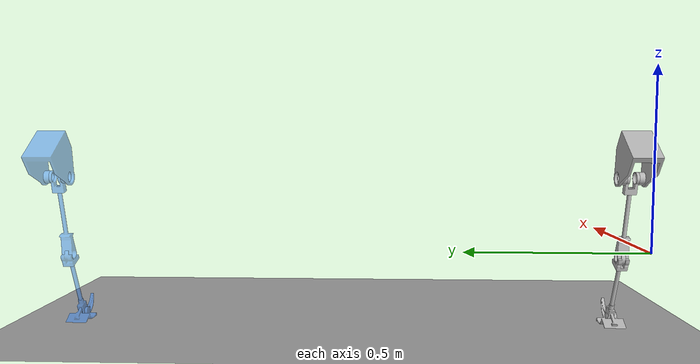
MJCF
<mujoco model="epa_dual_twin">
  <compiler angle="radian"/>
  <option gravity="0 0 -9.81" timestep="0.002" integrator="RK4"/>

  <visual>
    <headlight ambient="0.4 0.4 0.4"/>
  </visual>

  <asset>
    <texture type="skybox" builtin="gradient" rgb1="0.3 0.5 0.7"
             rgb2="0.9 0.9 0.9" width="512" height="512"/>
    <texture name="grid" type="2d" builtin="checker"
             rgb1="0.8 0.8 0.8" rgb2="0.7 0.7 0.7"
             width="300" height="300"/>
    <material name="grid_mat" texture="grid" texrepeat="5 5"
              reflectance="0.1"/>

    <mesh name="base_link_actual" content_type="model/stl" file="/home/krishna/epa_twin_project/meshes/base_link.stl" scale="0.001 0.001 0.001"/>
    <mesh name="actuator_1_v1_1_actual" content_type="model/stl" file="/home/krishna/epa_twin_project/meshes/actuator_1_v1_1.stl" scale="0.001 0.001 0.001"/>
    <mesh name="actuator_2_v1_1_actual" content_type="model/stl" file="/home/krishna/epa_twin_project/meshes/actuator_2_v1_1.stl" scale="0.001 0.001 0.001"/>
    <mesh name="hip_clevis_v1_1_actual" content_type="model/stl" file="/home/krishna/epa_twin_project/meshes/hip_clevis_v1_1.stl" scale="0.001 0.001 0.001"/>
    <mesh name="leg_1_rod_v1_1_actual" content_type="model/stl" file="/home/krishna/epa_twin_project/meshes/leg_1_rod_v1_1.stl" scale="0.001 0.001 0.001"/>
    <mesh name="knee_bearing_holder_v1_1_actual" content_type="model/stl" file="/home/krishna/epa_twin_project/meshes/knee_bearing_holder_v1_1.stl" scale="0.001 0.001 0.001"/>
    <mesh name="leg_2_rod_v1_1_actual" content_type="model/stl" file="/home/krishna/epa_twin_project/meshes/leg_2_rod_v1_1.stl" scale="0.001 0.001 0.001"/>
    <mesh name="ankle_bracelet_v1_1_actual" content_type="model/stl" file="/home/krishna/epa_twin_project/meshes/ankle_bracelet_v1_1.stl" scale="0.001 0.001 0.001"/>
    <mesh name="ankle_clevis_v1_1_actual" content_type="model/stl" file="/home/krishna/epa_twin_project/meshes/ankle_clevis_v1_1.stl" scale="0.001 0.001 0.001"/>
    <mesh name="knee_bearing_v1_1_actual" content_type="model/stl" file="/home/krishna/epa_twin_project/meshes/knee_bearing_v1_1.stl" scale="0.001 0.001 0.001"/>
    <mesh name="ankle_bearing_v1_1_actual" content_type="model/stl" file="/home/krishna/epa_twin_project/meshes/ankle_bearing_v1_1.stl" scale="0.001 0.001 0.001"/>
    <mesh name="leg_stack_v1_1_actual" content_type="model/stl" file="/home/krishna/epa_twin_project/meshes/leg_stack_v1_1.stl" scale="0.001 0.001 0.001"/>

    <mesh name="base_link_predicted" file="/home/krishna/epa_twin_project/meshes/base_link.stl" scale="0.001 0.001 0.001"/>
    <mesh name="actuator_1_v1_1_predicted" file="/home/krishna/epa_twin_project/meshes/actuator_1_v1_1.stl" scale="0.001 0.001 0.001"/>
    <mesh name="actuator_2_v1_1_predicted" file="/home/krishna/epa_twin_project/meshes/actuator_2_v1_1.stl" scale="0.001 0.001 0.001"/>
    <mesh name="hip_clevis_v1_1_predicted" file="/home/krishna/epa_twin_project/meshes/hip_clevis_v1_1.stl" scale="0.001 0.001 0.001"/>
    <mesh name="leg_1_rod_v1_1_predicted" file="/home/krishna/epa_twin_project/meshes/leg_1_rod_v1_1.stl" scale="0.001 0.001 0.001"/>
    <mesh name="knee_bearing_holder_v1_1_predicted" file="/home/krishna/epa_twin_project/meshes/knee_bearing_holder_v1_1.stl" scale="0.001 0.001 0.001"/>
    <mesh name="leg_2_rod_v1_1_predicted" file="/home/krishna/epa_twin_project/meshes/leg_2_rod_v1_1.stl" scale="0.001 0.001 0.001"/>
    <mesh name="ankle_bracelet_v1_1_predicted" file="/home/krishna/epa_twin_project/meshes/ankle_bracelet_v1_1.stl" scale="0.001 0.001 0.001"/>
    <mesh name="ankle_clevis_v1_1_predicted" file="/home/krishna/epa_twin_project/meshes/ankle_clevis_v1_1.stl" scale="0.001 0.001 0.001"/>
    <mesh name="knee_bearing_v1_1_predicted" file="/home/krishna/epa_twin_project/meshes/knee_bearing_v1_1.stl" scale="0.001 0.001 0.001"/>
    <mesh name="ankle_bearing_v1_1_predicted" file="/home/krishna/epa_twin_project/meshes/ankle_bearing_v1_1.stl" scale="0.001 0.001 0.001"/>
    <mesh name="leg_stack_v1_1_predicted" file="/home/krishna/epa_twin_project/meshes/leg_stack_v1_1.stl" scale="0.001 0.001 0.001"/>

  </asset>

  <worldbody>
    <light directional="true" pos="0 0.25 2" dir="0 0 -1"
           diffuse="0.8 0.8 0.8"/>
    <!-- Floor placed at tested correct height for foot clearance -->
    <geom name="floor" type="plane" size="3 3 0.05"
          pos="0 0.25 -0.21" material="grid_mat"/>

    <!-- ACTUAL LEG (silver, noisy/drifting) -->

    <geom type="mesh" rgba="0.7 0.7 0.7 1" mesh="base_link_actual"/>
    <geom type="mesh" rgba="0.7 0.7 0.7 1" mesh="actuator_1_v1_1_actual"/>
    <geom type="mesh" rgba="0.7 0.7 0.7 1" mesh="actuator_2_v1_1_actual"/>
    <body name="hip_clevis_v1_1_actual" pos="-0.05457 0.094588 0.204524">
      <inertial pos="0.0392011 -0.015588 -0.1019" quat="0.983604 0 -0.18034 0" mass="0.0915237" diaginertia="0.000584301 0.000581119 1.18179e-05"/>
      <joint name="Hip_actual" pos="0 0 0" axis="0 -1 0" range="-0.261799 1.5708" actuatorfrcrange="-100 100" damping="2" frictionloss="0.2"/>
      <geom pos="0.05457 -0.094588 -0.204524" type="mesh" rgba="0.7 0.7 0.7 1" mesh="hip_clevis_v1_1_actual"/>
      <geom pos="0.05457 -0.094588 -0.204524" type="mesh" rgba="0.7 0.7 0.7 1" mesh="leg_1_rod_v1_1_actual"/>
      <body name="knee_bearing_holder_v1_1_actual" pos="0.070356 -0.020301 -0.212103">
        <inertial pos="0.110671 0.0561601 -0.0673519" quat="0.33562 0.428228 0.728259 0.416675" mass="0.184834" diaginertia="0.00662782 0.00590616 0.00085757"/>
        <joint name="Knee_actual" pos="0 0 0" axis="0 1 0" range="-0.523599 0.034907" actuatorfrcrange="-100 100" damping="2" frictionloss="0.2"/>
        <geom pos="-0.015786 -0.074287 0.007579" quat="1 0 0 0" type="mesh" rgba="0.7 0.7 0.7 1" mesh="knee_bearing_holder_v1_1_actual"/>
        <geom pos="-0.015786 -0.074287 0.007579" type="mesh" rgba="0.7 0.7 0.7 1" mesh="leg_2_rod_v1_1_actual"/>
        <geom pos="-0.015786 -0.074287 0.007579" quat="1 0 0 0" type="mesh" rgba="0.7 0.7 0.7 1" mesh="ankle_bracelet_v1_1_actual"/>
        <geom pos="-0.015786 -0.074287 0.007579" quat="1 0 0 0" type="mesh" rgba="0.7 0.7 0.7 1" mesh="ankle_clevis_v1_1_actual"/>
        <geom pos="-0.015786 -0.074287 0.007579" quat="1 0 0 0" type="mesh" rgba="0.7 0.7 0.7 1" mesh="ankle_bearing_v1_1_actual"/>
        <geom pos="-0.015786 -0.074287 0.007579" quat="1 0 0 0" type="mesh" rgba="0.7 0.7 0.7 1" mesh="knee_bearing_v1_1_actual"/>
        <body name="leg_stack_v1_1_actual" pos="0.069956 0.001088 -0.182139">
          <inertial pos="-0.0415777 0.00362562 -0.0383386" quat="0 0.537784 0 0.843083" mass="0.162286" diaginertia="0.000519964 0.000512 7.00356e-05"/>
          <joint name="Ankle_actual" pos="0 0 0" axis="0 1 0" range="-1.13446 0.261799" actuatorfrcrange="-100 100" damping="2" frictionloss="0.2"/>
          <geom pos="-0.085742 -0.075375 0.189718" quat="1 0 0 0" type="mesh" rgba="0.7 0.7 0.7 1" mesh="leg_stack_v1_1_actual"/>
        </body>
      </body>
    </body>

    <!-- PREDICTED LEG (blue, clean twin) -->

    <body name="predicted_root_offset" pos="0 1.5 0">

    <geom type="mesh" rgba="0.25 0.55 0.95 0.55" mesh="base_link_predicted"/>
    <geom type="mesh" rgba="0.25 0.55 0.95 0.55" mesh="actuator_1_v1_1_predicted"/>
    <geom type="mesh" rgba="0.25 0.55 0.95 0.55" mesh="actuator_2_v1_1_predicted"/>
    <body name="hip_clevis_v1_1_predicted" pos="-0.05457 0.094588 0.204524">
      <inertial pos="0.0392011 -0.015588 -0.1019" quat="0.983604 0 -0.18034 0" mass="0.0915237" diaginertia="0.000584301 0.000581119 1.18179e-05"/>
      <joint name="Hip_predicted" pos="0 0 0" axis="0 -1 0" range="-0.261799 1.5708" actuatorfrcrange="-100 100" damping="2" frictionloss="0.2"/>
      <geom pos="0.05457 -0.094588 -0.204524" type="mesh" rgba="0.25 0.55 0.95 0.55" mesh="hip_clevis_v1_1_predicted"/>
      <geom pos="0.05457 -0.094588 -0.204524" type="mesh" rgba="0.25 0.55 0.95 0.55" mesh="leg_1_rod_v1_1_predicted"/>
      <body name="knee_bearing_holder_v1_1_predicted" pos="0.070356 -0.020301 -0.212103">
        <inertial pos="0.110671 0.0561601 -0.0673519" quat="0.33562 0.428228 0.728259 0.416675" mass="0.184834" diaginertia="0.00662782 0.00590616 0.00085757"/>
        <joint name="Knee_predicted" pos="0 0 0" axis="0 1 0" range="-0.523599 0.034907" actuatorfrcrange="-100 100" damping="2" frictionloss="0.2"/>
        <geom pos="-0.015786 -0.074287 0.007579" quat="1 0 0 0" type="mesh" rgba="0.25 0.55 0.95 0.55" mesh="knee_bearing_holder_v1_1_predicted"/>
        <geom pos="-0.015786 -0.074287 0.007579" type="mesh" rgba="0.25 0.55 0.95 0.55" mesh="leg_2_rod_v1_1_predicted"/>
        <geom pos="-0.015786 -0.074287 0.007579" quat="1 0 0 0" type="mesh" rgba="0.25 0.55 0.95 0.55" mesh="ankle_bracelet_v1_1_predicted"/>
        <geom pos="-0.015786 -0.074287 0.007579" quat="1 0 0 0" type="mesh" rgba="0.25 0.55 0.95 0.55" mesh="ankle_clevis_v1_1_predicted"/>
        <geom pos="-0.015786 -0.074287 0.007579" quat="1 0 0 0" type="mesh" rgba="0.25 0.55 0.95 0.55" mesh="ankle_bearing_v1_1_predicted"/>
        <geom pos="-0.015786 -0.074287 0.007579" quat="1 0 0 0" type="mesh" rgba="0.25 0.55 0.95 0.55" mesh="knee_bearing_v1_1_predicted"/>
        <body name="leg_stack_v1_1_predicted" pos="0.069956 0.001088 -0.182139">
          <inertial pos="-0.0415777 0.00362562 -0.0383386" quat="0 0.537784 0 0.843083" mass="0.162286" diaginertia="0.000519964 0.000512 7.00356e-05"/>
          <joint name="Ankle_predicted" pos="0 0 0" axis="0 1 0" range="-1.13446 0.261799" actuatorfrcrange="-100 100" damping="2" frictionloss="0.2"/>
          <geom pos="-0.085742 -0.075375 0.189718" quat="1 0 0 0" type="mesh" rgba="0.25 0.55 0.95 0.55" mesh="leg_stack_v1_1_predicted"/>
        </body>
      </body>
    </body>

    </body>

  </worldbody>
</mujoco>
